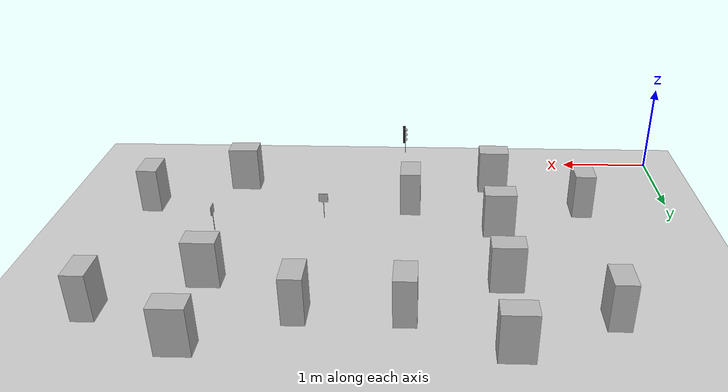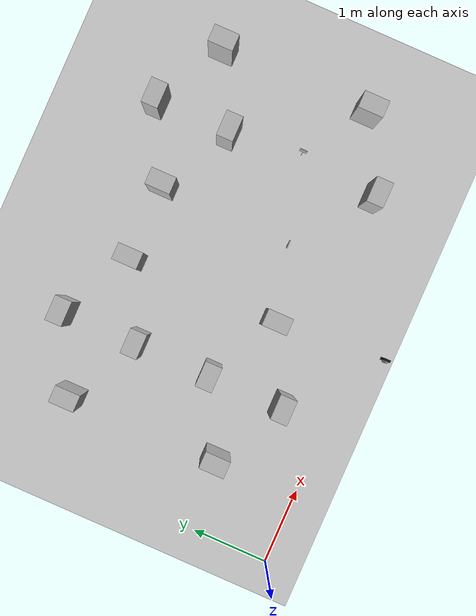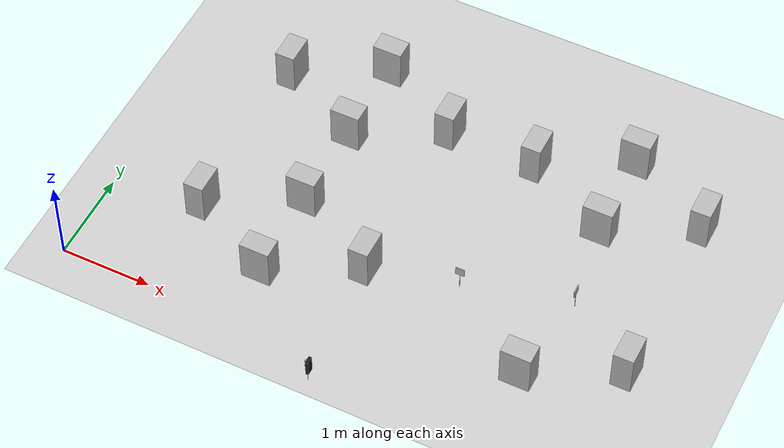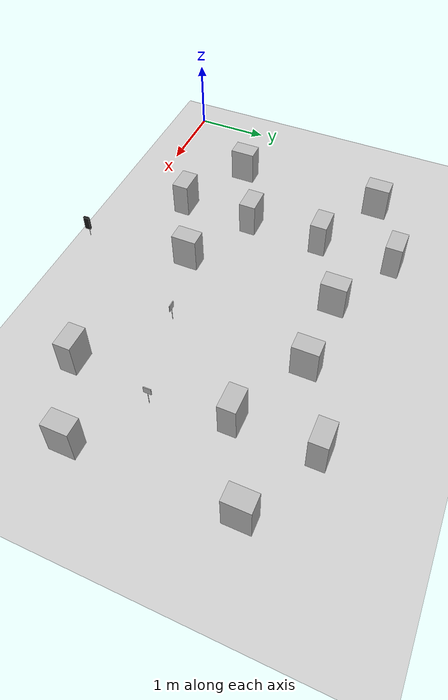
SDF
<?xml version="1.0"?>
<sdf version="1.5">
   <world name="default">
      <scene>
      <sky>
         <clouds>
            <speed>12</speed>
         </clouds>
      </sky>
      </scene>

      <include>
      <uri>model://sun</uri>
      </include>

      <model name="map">
         <static>true</static>
         <pose>3.221875 2.338125 0 0 0 0</pose>
         <link name="link">
            <collision name="collision">
               <geometry>
                  <plane>
                     <normal>0 0 1</normal>
                     <size>7.296875 5.621875</size>
                  </plane>
               </geometry>
               <surface>
                  <friction>
                     <ode>
                        <mu>100</mu>
                        <mu2>50</mu2>
                     </ode>
                  </friction>
               </surface>
            </collision>
            <visual name="visual">
               <cast_shadows>false</cast_shadows>
               <geometry>
                  <plane>
                     <normal>0 0 1</normal>
                     <size>7.296875 5.621875</size>
                  </plane>
               </geometry>
               <material>
                  <script>
                     <uri>model://map/materials/scripts</uri>
                     <uri>model://map/materials/textures/</uri>
                     <name>map/Image</name>
                  </script>
               </material>
            </visual>
         </link>
      </model>

      <model name="crosswalk">
         <static>true</static>
         <pose>5.0 1.7 0.25 0 0 0</pose>
         <link name="link">
            <collision name='collision'>
               <geometry>
               <box>
                  <size>0.01 0.1 0.1</size>
               </box>
               </geometry>
            </collision>
            <visual name='visual'>
               <cast_shadows>false</cast_shadows>
               <geometry>
               <box>
                  <size>0.01 0.1 0.1</size>
               </box>
               </geometry>
               <material>
                  <script>
                     <uri>model://crosswalk/materials/scripts</uri>
                     <uri>model://crosswalk/materials/textures/</uri>
                     <name>crosswalk/Image</name>
                  </script>
               </material>
            </visual>
            <collision name='pole_collision'>
               <pose>0 0 -0.125 0 0 0</pose>
               <geometry>
               <box>
                  <size>0.005 0.005 0.25</size>
               </box>
               </geometry>
            </collision>
            <visual name='pole_visual'>
               <pose>0 0 -0.125 0 0 0</pose>
               <cast_shadows>false</cast_shadows>
               <geometry>
               <box>
                  <size>0.005 0.005 0.25</size>
               </box>
               </geometry>
            </visual>
         </link>
      </model>

      <model name="roundabout">
         <static>true</static>
         <pose>3.85 1.4 0.25 0 0 1.570796</pose>
         <link name="link">
            <collision name='collision'>
               <geometry>
               <box>
                  <size>0.01 0.1 0.1</size>
               </box>
               </geometry>
            </collision>
            <visual name='visual'>
               <cast_shadows>false</cast_shadows>
               <geometry>
               <box>
                  <size>0.01 0.1 0.1</size>
               </box>
               </geometry>
               <material>
                  <script>
                     <uri>model://roundabout/materials/scripts</uri>
                     <uri>model://roundabout/materials/textures/</uri>
                     <name>roundabout/Image</name>
                  </script>
               </material>
            </visual>
            <collision name='pole_collision'>
               <pose>0 0 -0.125 0 0 0</pose>
               <geometry>
               <box>
                  <size>0.005 0.005 0.25</size>
               </box>
               </geometry>
            </collision>
            <visual name='pole_visual'>
               <pose>0 0 -0.125 0 0 0</pose>
               <cast_shadows>false</cast_shadows>
               <geometry>
               <box>
                  <size>0.005 0.005 0.25</size>
               </box>
               </geometry>
            </visual>
         </link>
      </model>

      <model name='traffic_light'>
         <static>true</static>
         <pose>3.0 -0.3 0.25 0 0 -1.570796</pose>
         <link name='color'>
            <pose>0 0 0 0 0 0</pose>
            <light name='red' type='point'>
               <pose>0 0 0.066 0 0 0</pose>
               <attenuation>
                  <range>0.2</range>
                  <linear>0.1</linear>
               </attenuation>
               <diffuse>1 0.2 0.2 1</diffuse>
               <specular>1 1 1 1</specular>
               <direction>0 0 -1</direction>
               <spot>
                  <inner_angle>0</inner_angle>
                  <outer_angle>0</outer_angle>
                  <falloff>0</falloff>
               </spot>
            </light>
            <visual name='red'>
               <pose>0 0 0.066 0 0 0</pose>
               <geometry>
                  <sphere>
                  <radius>0.026</radius>
                  </sphere>
               </geometry>
            </visual>
            <light name='yellow' type='point'>
               <pose>0 0 0 0 0 0</pose>
               <attenuation>
                  <range>0.2</range>
                  <linear>0.1</linear>
               </attenuation>
               <diffuse>1 0.2 0.2 1</diffuse>
               <specular>1 1 1 1</specular>
               <direction>0 0 -1</direction>
               <spot>
                  <inner_angle>0</inner_angle>
                  <outer_angle>0</outer_angle>
                  <falloff>0</falloff>
               </spot>
            </light>
            <visual name='yellow'>
               <pose>0 0 0 0 0 0</pose>
               <geometry>
                  <sphere>
                  <radius>0.026</radius>
                  </sphere>
               </geometry>
            </visual>
            <light name='green' type='point'>
               <pose>0 0 -0.066 0 0 0</pose>
               <attenuation>
                  <range>0.2</range>
                  <linear>0.1</linear>
               </attenuation>
               <diffuse>1 0.2 0.2 1</diffuse>
               <specular>1 1 1 1</specular>
               <direction>0 0 -1</direction>
               <spot>
                  <inner_angle>0</inner_angle>
                  <outer_angle>0</outer_angle>
                  <falloff>0</falloff>
               </spot>
            </light>
            <visual name='green'>
               <pose>0 0 -0.066 0 0 0</pose>
               <geometry>
                  <sphere>
                  <radius>0.026</radius>
                  </sphere>
               </geometry>
            </visual>
            <visual name='back'>
               <pose>0 0.015 0 0 0 0</pose>
               <geometry>
                  <box>
                  <size>0.08 0.03 0.2</size>
                  </box>
               </geometry>
               <material>
                  <ambient>0.1 0.1 0.1 1</ambient>
                  <diffuse>0.1 0.1 0.1 1</diffuse>
                  <specular>0.1 0.1 0.1 1</specular>
                  <emissive>0.1 0.1 0.1 1</emissive>
               </material>
            </visual>
            <self_collide>0</self_collide>
            <enable_wind>0</enable_wind>
            <kinematic>0</kinematic>
            <collision name='pole_collision'>
               <pose>0 0 -0.125 0 0 0</pose>
               <geometry>
               <box>
                  <size>0.005 0.005 0.25</size>
               </box>
               </geometry>
            </collision>
            <visual name='pole_visual'>
               <pose>0 0 -0.125 0 0 0</pose>
               <cast_shadows>false</cast_shadows>
               <geometry>
               <box>
                  <size>0.005 0.005 0.25</size>
               </box>
               </geometry>
            </visual>
         </link>
         <plugin name='light_control' filename='libLedPlugin.so'>
            <enable>true</enable>
            <light>
               <id>color/red</id>
               <block>
                  <duration>5</duration>
                  <interval>0</interval>
                  <color>1 0 0</color>
               </block>
               <block>
                  <duration>5</duration>
                  <interval>0</interval>
                  <color>0.01 0 0</color>
               </block>
               <block>
                  <duration>5</duration>
                  <interval>0</interval>
                  <color>0.01 0 0</color>
               </block>
               <enable>true</enable>
            </light>
            <light>
               <id>color/yellow</id>
               <block>
                  <duration>5</duration>
                  <interval>0</interval>
                  <color>0.01 0.01 0</color>
               </block>
               <block>
                  <duration>5</duration>
                  <interval>0</interval>
                  <color>1 1 0</color>
               </block>
               <block>
                  <duration>5</duration>
                  <interval>0</interval>
                  <color>0.01 0.01 0</color>
               </block>
               <enable>true</enable>
            </light>
            <light>
               <id>color/green</id>
               <block>
                  <duration>5</duration>
                  <interval>0</interval>
                  <color>0 0.01 0</color>
               </block>
               <block>
                  <duration>5</duration>
                  <interval>0</interval>
                  <color>0 0.01 0</color>
               </block>
               <block>
                  <duration>5</duration>
                  <interval>0</interval>
                  <color>0 1 0</color>
               </block>
               <enable>true</enable>
            </light>
         </plugin>
      </model>

      <model name="building1">
         <static>true</static>
         <pose>1 1.15 0.25 0 0 1.570796</pose>
         <link name="link">
            <collision name='collision'>
               <geometry>
               <box>
                  <size>0.33 0.22 0.5</size>
               </box>
               </geometry>
            </collision>
            <visual name='visual'>
               <cast_shadows>false</cast_shadows>
               <geometry>
               <box>
                  <size>0.33 0.22 0.5</size>
               </box>
               </geometry>
            </visual>
         </link>
      </model>

      <model name="building2">
         <static>true</static>
         <pose>2.9 1.15 0.25 0 0 1.570796</pose>
         <link name="link">
            <collision name='collision'>
               <geometry>
               <box>
                  <size>0.33 0.22 0.5</size>
               </box>
               </geometry>
            </collision>
            <visual name='visual'>
               <cast_shadows>false</cast_shadows>
               <geometry>
               <box>
                  <size>0.33 0.22 0.5</size>
               </box>
               </geometry>
            </visual>
         </link>
      </model>

      <model name="building3">
         <static>true</static>
         <pose>1.95 0.65 0.25 0 0 0</pose>
         <link name="link">
            <collision name='collision'>
               <geometry>
               <box>
                  <size>0.33 0.22 0.5</size>
               </box>
               </geometry>
            </collision>
            <visual name='visual'>
               <cast_shadows>false</cast_shadows>
               <geometry>
               <box>
                  <size>0.33 0.22 0.5</size>
               </box>
               </geometry>
            </visual>
         </link>
      </model>

      <model name="building4">
         <static>true</static>
         <pose>1.95 1.65 0.25 0 0 0</pose>
         <link name="link">
            <collision name='collision'>
               <geometry>
               <box>
                  <size>0.33 0.22 0.5</size>
               </box>
               </geometry>
            </collision>
            <visual name='visual'>
               <cast_shadows>false</cast_shadows>
               <geometry>
               <box>
                  <size>0.33 0.22 0.5</size>
               </box>
               </geometry>
            </visual>
         </link>
      </model>

      <model name="building5">
         <static>true</static>
         <pose>1 3.15 0.25 0 0 1.570796</pose>
         <link name="link">
            <collision name='collision'>
               <geometry>
               <box>
                  <size>0.33 0.22 0.5</size>
               </box>
               </geometry>
            </collision>
            <visual name='visual'>
               <cast_shadows>false</cast_shadows>
               <geometry>
               <box>
                  <size>0.33 0.22 0.5</size>
               </box>
               </geometry>
            </visual>
         </link>
      </model>

      <model name="building6">
         <static>true</static>
         <pose>2.9 3.15 0.25 0 0 1.570796</pose>
         <link name="link">
            <collision name='collision'>
               <geometry>
               <box>
                  <size>0.33 0.22 0.5</size>
               </box>
               </geometry>
            </collision>
            <visual name='visual'>
               <cast_shadows>false</cast_shadows>
               <geometry>
               <box>
                  <size>0.33 0.22 0.5</size>
               </box>
               </geometry>
            </visual>
         </link>
      </model>

      <model name="building7">
         <static>true</static>
         <pose>1.95 2.65 0.25 0 0 0</pose>
         <link name="link">
            <collision name='collision'>
               <geometry>
               <box>
                  <size>0.33 0.22 0.5</size>
               </box>
               </geometry>
            </collision>
            <visual name='visual'>
               <cast_shadows>false</cast_shadows>
               <geometry>
               <box>
                  <size>0.33 0.22 0.5</size>
               </box>
               </geometry>
            </visual>
         </link>
      </model>

      <model name="building8">
         <static>true</static>
         <pose>1.95 3.65 0.25 0 0 0</pose>
         <link name="link">
            <collision name='collision'>
               <geometry>
               <box>
                  <size>0.33 0.22 0.5</size>
               </box>
               </geometry>
            </collision>
            <visual name='visual'>
               <cast_shadows>false</cast_shadows>
               <geometry>
               <box>
                  <size>0.33 0.22 0.5</size>
               </box>
               </geometry>
            </visual>
         </link>
      </model>

      <model name="building9">
         <static>true</static>
         <pose>3.9 3.15 0.25 0 0 1.570796</pose>
         <link name="link">
            <collision name='collision'>
               <geometry>
               <box>
                  <size>0.33 0.22 0.5</size>
               </box>
               </geometry>
            </collision>
            <visual name='visual'>
               <cast_shadows>false</cast_shadows>
               <geometry>
               <box>
                  <size>0.33 0.22 0.5</size>
               </box>
               </geometry>
            </visual>
         </link>
      </model>

      <model name="building10">
         <static>true</static>
         <pose>5.8 3.15 0.25 0 0 1.570796</pose>
         <link name="link">
            <collision name='collision'>
               <geometry>
               <box>
                  <size>0.33 0.22 0.5</size>
               </box>
               </geometry>
            </collision>
            <visual name='visual'>
               <cast_shadows>false</cast_shadows>
               <geometry>
               <box>
                  <size>0.33 0.22 0.5</size>
               </box>
               </geometry>
            </visual>
         </link>
      </model>

      <model name="building11">
         <static>true</static>
         <pose>4.85 2.65 0.25 0 0 0</pose>
         <link name="link">
            <collision name='collision'>
               <geometry>
               <box>
                  <size>0.33 0.22 0.5</size>
               </box>
               </geometry>
            </collision>
            <visual name='visual'>
               <cast_shadows>false</cast_shadows>
               <geometry>
               <box>
                  <size>0.33 0.22 0.5</size>
               </box>
               </geometry>
            </visual>
         </link>
      </model>

      <model name="building12">
         <static>true</static>
         <pose>4.85 3.65 0.25 0 0 0</pose>
         <link name="link">
            <collision name='collision'>
               <geometry>
               <box>
                  <size>0.33 0.22 0.5</size>
               </box>
               </geometry>
            </collision>
            <visual name='visual'>
               <cast_shadows>false</cast_shadows>
               <geometry>
               <box>
                  <size>0.33 0.22 0.5</size>
               </box>
               </geometry>
            </visual>
         </link>
      </model>

      <model name="building13">
         <static>true</static>
         <pose>5.8 1.15 0.25 0 0 1.570796</pose>
         <link name="link">
            <collision name='collision'>
               <geometry>
               <box>
                  <size>0.33 0.22 0.5</size>
               </box>
               </geometry>
            </collision>
            <visual name='visual'>
               <cast_shadows>false</cast_shadows>
               <geometry>
               <box>
                  <size>0.33 0.22 0.5</size>
               </box>
               </geometry>
            </visual>
         </link>
      </model>

      <model name="building14">
         <static>true</static>
         <pose>4.85 0.65 0.25 0 0 0</pose>
         <link name="link">
            <collision name='collision'>
               <geometry>
               <box>
                  <size>0.33 0.22 0.5</size>
               </box>
               </geometry>
            </collision>
            <visual name='visual'>
               <cast_shadows>false</cast_shadows>
               <geometry>
               <box>
                  <size>0.33 0.22 0.5</size>
               </box>
               </geometry>
            </visual>
         </link>
      </model>

   </world>
</sdf>
